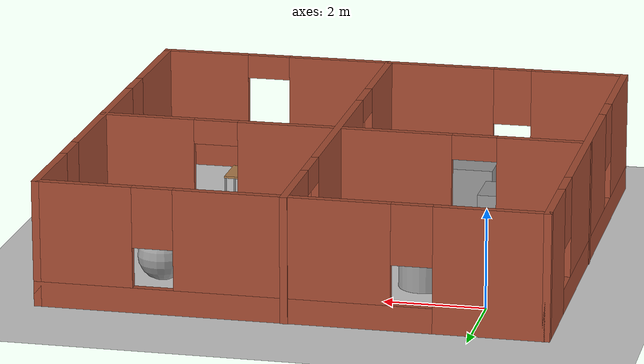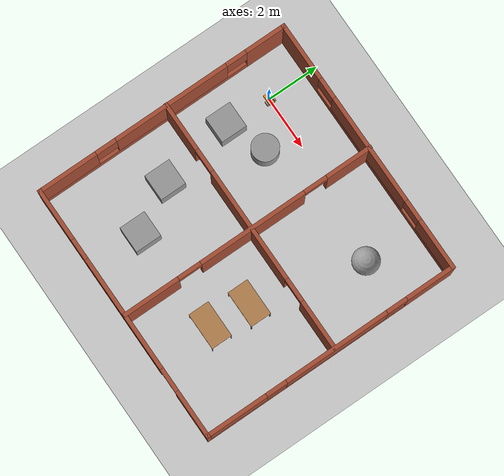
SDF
<sdf version="1.6">
 <world name="default">
  <model name="ground_plane">
   <static>1</static>
   <link name="link">
    <collision name="collision">
     <geometry><plane><normal>0 0 1</normal><size>100 100</size></plane></geometry>
     <surface><friction><ode><mu>100</mu><mu2>50</mu2></ode></friction></surface>
    </collision>
    <visual name="visual">
     <cast_shadows>0</cast_shadows>
     <geometry><plane><normal>0 0 1</normal><size>100 100</size></plane></geometry>
     <material>
      <script><uri>file://media/materials/scripts/gazebo.material</uri><name>Gazebo/Grey</name></script>
     </material>
    </visual>
   </link>
  </model>
  <light name="sun" type="directional">
   <pose>0 0 10 0 -0 0</pose>
   <diffuse>0.8 0.8 0.8 1</diffuse>
   <specular>0.1 0.1 0.1 1</specular>
   <attenuation>
    <range>1000</range>
    <constant>0.9</constant>
    <linear>0.01</linear>
    <quadratic>0.001</quadratic>
   </attenuation>
   <direction>-0.5 0.5 -1</direction>
  </light>
  <gravity>0 0 -9.8</gravity>
  <magnetic_field>6e-06 2.3e-05 -4.2e-05</magnetic_field>
  <atmosphere type="adiabatic"/>
  <physics name="default_physics" default="0" type="ode">
   <max_step_size>0.001</max_step_size>
   <real_time_factor>1</real_time_factor>
   <real_time_update_rate>1000</real_time_update_rate>
  </physics>
  <scene><ambient>0.4 0.4 0.4 1</ambient><background>0.7 0.7 0.7 1</background><shadows>1</shadows></scene>
  <spherical_coordinates>
   <surface_model>EARTH_WGS84</surface_model>
   <latitude_deg>0</latitude_deg>
   <longitude_deg>0</longitude_deg>
   <elevation>0</elevation>
   <heading_deg>0</heading_deg>
  </spherical_coordinates>
  <model name="mybot">
   <link name="chassis">
    <inertial>
     <pose>0.00198 0 0.09901 0 -0 0</pose>
     <mass>10.1</mass>
     <inertia>
      <ixx>0.500991</ixx>
      <ixy>0</ixy>
      <ixz>0.0019802</ixz>
      <iyy>1.00495</iyy>
      <iyz>0</iyz>
      <izz>0.103961</izz>
     </inertia>
    </inertial>
    <collision name="chassis_fixed_joint_lump__collision_collision">
     <geometry><box><size>0.4 0.2 0.1</size></box></geometry>
    </collision>
    <collision name="chassis_fixed_joint_lump__caster_collision_collision_1">
     <pose>-0.15 0 -0.05 0 -0 0</pose>
     <geometry><sphere><radius>0.05</radius></sphere></geometry>
    </collision>
    <collision name="chassis_fixed_joint_lump__camera_collision_2">
     <pose>0.2 0 0 0 -0 0</pose>
     <geometry><box><size>0.05 0.05 0.05</size></box></geometry>
    </collision>
    <visual name="chassis_visual_visual">
     <geometry><box><size>0.4 0.2 0.1</size></box></geometry>
     <material>
      <script><name>Gazebo/Orange</name><uri>file://media/materials/scripts/gazebo.material</uri></script>
     </material>
    </visual>
    <visual name="chassis_fixed_joint_lump__caster_visual_visual_1">
     <pose>-0.15 0 -0.05 0 -0 0</pose>
     <geometry><sphere><radius>0.05</radius></sphere></geometry>
    </visual>
    <visual name="chassis_fixed_joint_lump__camera_visual_2">
     <pose>0.2 0 0 0 -0 0</pose>
     <geometry><box><size>0.05 0.05 0.05</size></box></geometry>
     <material>
      <script><name>Gazebo/Green</name><uri>file://media/materials/scripts/gazebo.material</uri></script>
     </material>
    </visual>
    <sensor name="camera1" type="camera">
     <update_rate>30</update_rate>
     <camera name="head">
      <horizontal_fov>1.39626</horizontal_fov>
      <image><width>800</width><height>800</height><format>R8G8B8</format></image>
      <clip><near>0.02</near><far>300</far></clip>
     </camera>
     <plugin name="camera_controller" filename="libgazebo_ros_camera.so">
      <alwaysOn>true</alwaysOn>
      <updateRate>0.0</updateRate>
      <cameraName>mybot/camera1</cameraName>
      <imageTopicName>image_raw</imageTopicName>
      <cameraInfoTopicName>camera_info</cameraInfoTopicName>
      <frameName>camera</frameName>
      <hackBaseline>0.07</hackBaseline>
      <distortionK1>0.0</distortionK1>
      <distortionK2>0.0</distortionK2>
      <distortionK3>0.0</distortionK3>
      <distortionT1>0.0</distortionT1>
      <distortionT2>0.0</distortionT2>
      <robotNamespace>/</robotNamespace>
     </plugin>
     <pose>0.2 0 0 0 -0 0</pose>
    </sensor>
   </link>
   <link name="left_wheel">
    <pose>0.1 0.15 0 0 -0 0</pose>
    <inertial>
     <pose>0 0 0 -0 1.5707 1.5707</pose>
     <mass>5</mass>
     <inertia><ixx>1</ixx><ixy>0</ixy><ixz>0</ixz><iyy>1</iyy><iyz>0</iyz><izz>1</izz></inertia>
    </inertial>
    <collision name="left_wheel_fixed_joint_lump__collision_collision">
     <pose>0 0 0 3.14159 1.57079 -1.57089</pose>
     <geometry><cylinder><length>0.05</length><radius>0.1</radius></cylinder></geometry>
    </collision>
    <visual name="left_wheel_visual_visual">
     <pose>0 0 0 3.14159 1.57079 -1.57089</pose>
     <geometry><cylinder><length>0.05</length><radius>0.1</radius></cylinder></geometry>
    </visual>
   </link>
   <joint name="left_wheel_hinge" type="revolute">
    <child>left_wheel</child>
    <parent>chassis</parent>
    <axis>
     <xyz>0 1 0</xyz>
     <limit><lower>-1e+16</lower><upper>1e+16</upper></limit>
     <dynamics><spring_reference>0</spring_reference><spring_stiffness>0</spring_stiffness></dynamics>
     <use_parent_model_frame>1</use_parent_model_frame>
    </axis>
   </joint>
   <link name="right_wheel">
    <pose>0.1 -0.15 0 0 -0 0</pose>
    <inertial>
     <pose>0 0 0 -0 1.5707 1.5707</pose>
     <mass>5</mass>
     <inertia><ixx>1</ixx><ixy>0</ixy><ixz>0</ixz><iyy>1</iyy><iyz>0</iyz><izz>1</izz></inertia>
    </inertial>
    <collision name="right_wheel_fixed_joint_lump__collision_collision">
     <pose>0 0 0 3.14159 1.57079 -1.57089</pose>
     <geometry><cylinder><length>0.05</length><radius>0.1</radius></cylinder></geometry>
    </collision>
    <visual name="right_wheel_visual_visual">
     <pose>0 0 0 3.14159 1.57079 -1.57089</pose>
     <geometry><cylinder><length>0.05</length><radius>0.1</radius></cylinder></geometry>
    </visual>
   </link>
   <joint name="right_wheel_hinge" type="revolute">
    <child>right_wheel</child>
    <parent>chassis</parent>
    <axis>
     <xyz>0 1 0</xyz>
     <limit><lower>-1e+16</lower><upper>1e+16</upper></limit>
     <dynamics><spring_reference>0</spring_reference><spring_stiffness>0</spring_stiffness></dynamics>
     <use_parent_model_frame>1</use_parent_model_frame>
    </axis>
   </joint>
   <static>0</static>
   <plugin name="differential_drive_controller" filename="libgazebo_ros_diff_drive.so">
    <legacyMode>false</legacyMode>
    <alwaysOn>true</alwaysOn>
    <updateRate>20</updateRate>
    <leftJoint>left_wheel_hinge</leftJoint>
    <rightJoint>right_wheel_hinge</rightJoint>
    <wheelSeparation>0.4</wheelSeparation>
    <wheelDiameter>0.1</wheelDiameter>
    <torque>20</torque>
    <commandTopic>cmd_vel</commandTopic>
    <odometryTopic>odom</odometryTopic>
    <odometryFrame>odom</odometryFrame>
    <robotBaseFrame>chassis</robotBaseFrame>
    <robotNamespace>/</robotNamespace>
   </plugin>
   <pose>0.003289 4.5e-05 0.100001 2e-06 7e-06 0.000756</pose>
  </model>
  <model name="mybuilding">
   <pose>3.48839 -3.34484 0 0 -0 0</pose>
   <link name="Wall_11">
    <pose>4.93158 -0.009977 0 0 0 -1.5708</pose>
    <visual name="Wall_11_Visual_0">
     <pose>-4.03444 0 1.25 0 -0 0</pose>
     <geometry><box><size>1.93112 0.15 2.5</size></box></geometry>
     <material>
      <script><uri>file://media/materials/scripts/gazebo.material</uri><name>Gazebo/Bricks</name></script>
      <ambient>1 1 1 1</ambient>
     </material>
    </visual>
    <collision name="Wall_11_Collision_0">
     <geometry><box><size>1.93112 0.15 2.5</size></box></geometry>
     <pose>-4.03444 0 1.25 0 -0 0</pose>
    </collision>
    <visual name="Wall_11_Visual_1">
     <pose>0.965559 0 0.25 0 -0 0</pose>
     <geometry><box><size>8.06888 0.15 0.5</size></box></geometry>
     <material>
      <script><uri>file://media/materials/scripts/gazebo.material</uri><name>Gazebo/Bricks</name></script>
      <ambient>1 1 1 1</ambient>
     </material>
    </visual>
    <collision name="Wall_11_Collision_1">
     <geometry><box><size>8.06888 0.15 0.5</size></box></geometry>
     <pose>0.965559 0 0.25 0 -0 0</pose>
    </collision>
    <visual name="Wall_11_Visual_2">
     <pose>-0.248263 0 1.5 0 -0 0</pose>
     <geometry><box><size>4.04124 0.15 2</size></box></geometry>
     <material>
      <script><uri>file://media/materials/scripts/gazebo.material</uri><name>Gazebo/Bricks</name></script>
      <ambient>1 1 1 1</ambient>
     </material>
    </visual>
    <collision name="Wall_11_Collision_2">
     <geometry><box><size>4.04124 0.15 2</size></box></geometry>
     <pose>-0.248263 0 1.5 0 -0 0</pose>
    </collision>
    <visual name="Wall_11_Visual_3">
     <pose>3.78618 0 1.5 0 -0 0</pose>
     <geometry><box><size>2.42765 0.15 2</size></box></geometry>
     <material>
      <script><uri>file://media/materials/scripts/gazebo.material</uri><name>Gazebo/Bricks</name></script>
      <ambient>1 1 1 1</ambient>
     </material>
    </visual>
    <collision name="Wall_11_Collision_3">
     <geometry><box><size>2.42765 0.15 2</size></box></geometry>
     <pose>3.78618 0 1.5 0 -0 0</pose>
    </collision>
    <visual name="Wall_11_Visual_4">
     <pose>-2.66888 0 1.9 0 -0 0</pose>
     <geometry><box><size>0.8 0.15 1.2</size></box></geometry>
     <material>
      <script><uri>file://media/materials/scripts/gazebo.material</uri><name>Gazebo/Bricks</name></script>
      <ambient>1 1 1 1</ambient>
     </material>
    </visual>
    <collision name="Wall_11_Collision_4">
     <geometry><box><size>0.8 0.15 1.2</size></box></geometry>
     <pose>-2.66888 0 1.9 0 -0 0</pose>
    </collision>
    <visual name="Wall_11_Visual_5">
     <pose>2.17236 0 1.9 0 -0 0</pose>
     <geometry><box><size>0.8 0.15 1.2</size></box></geometry>
     <material>
      <script><uri>file://media/materials/scripts/gazebo.material</uri><name>Gazebo/Bricks</name></script>
      <ambient>1 1 1 1</ambient>
     </material>
    </visual>
    <collision name="Wall_11_Collision_5">
     <geometry><box><size>0.8 0.15 1.2</size></box></geometry>
     <pose>2.17236 0 1.9 0 -0 0</pose>
    </collision>
   </link>
   <link name="Wall_13">
    <pose>0.006582 -4.93498 0 0 -0 0</pose>
    <visual name="Wall_13_Visual_0">
     <pose>-3.98803 0 1.25 0 -0 0</pose>
     <geometry><box><size>2.02393 0.15 2.5</size></box></geometry>
     <material>
      <script><uri>file://media/materials/scripts/gazebo.material</uri><name>Gazebo/Bricks</name></script>
      <ambient>1 1 1 1</ambient>
     </material>
    </visual>
    <collision name="Wall_13_Collision_0">
     <geometry><box><size>2.02393 0.15 2.5</size></box></geometry>
     <pose>-3.98803 0 1.25 0 -0 0</pose>
    </collision>
    <visual name="Wall_13_Visual_1">
     <pose>4.07039 0 1.25 0 -0 0</pose>
     <geometry><box><size>1.85923 0.15 2.5</size></box></geometry>
     <material>
      <script><uri>file://media/materials/scripts/gazebo.material</uri><name>Gazebo/Bricks</name></script>
      <ambient>1 1 1 1</ambient>
     </material>
    </visual>
    <collision name="Wall_13_Collision_1">
     <geometry><box><size>1.85923 0.15 2.5</size></box></geometry>
     <pose>4.07039 0 1.25 0 -0 0</pose>
    </collision>
    <visual name="Wall_13_Visual_2">
     <pose>-0.367647 0 0.25 0 -0 0</pose>
     <geometry><box><size>5.21684 0.15 0.5</size></box></geometry>
     <material>
      <script><uri>file://media/materials/scripts/gazebo.material</uri><name>Gazebo/Bricks</name></script>
      <ambient>1 1 1 1</ambient>
     </material>
    </visual>
    <collision name="Wall_13_Collision_2">
     <geometry><box><size>5.21684 0.15 0.5</size></box></geometry>
     <pose>-0.367647 0 0.25 0 -0 0</pose>
    </collision>
    <visual name="Wall_13_Visual_3">
     <pose>0.032353 0 1.5 0 -0 0</pose>
     <geometry><box><size>4.41684 0.15 2</size></box></geometry>
     <material>
      <script><uri>file://media/materials/scripts/gazebo.material</uri><name>Gazebo/Bricks</name></script>
      <ambient>1 1 1 1</ambient>
     </material>
    </visual>
    <collision name="Wall_13_Collision_3">
     <geometry><box><size>4.41684 0.15 2</size></box></geometry>
     <pose>0.032353 0 1.5 0 -0 0</pose>
    </collision>
    <visual name="Wall_13_Visual_4">
     <pose>-2.57607 0 1.9 0 -0 0</pose>
     <geometry><box><size>0.8 0.15 1.2</size></box></geometry>
     <material>
      <script><uri>file://media/materials/scripts/gazebo.material</uri><name>Gazebo/Bricks</name></script>
      <ambient>1 1 1 1</ambient>
     </material>
    </visual>
    <collision name="Wall_13_Collision_4">
     <geometry><box><size>0.8 0.15 1.2</size></box></geometry>
     <pose>-2.57607 0 1.9 0 -0 0</pose>
    </collision>
    <visual name="Wall_13_Visual_5">
     <pose>2.69077 0 2.25 0 -0 0</pose>
     <geometry><box><size>0.9 0.15 0.5</size></box></geometry>
     <material>
      <script><uri>file://media/materials/scripts/gazebo.material</uri><name>Gazebo/Bricks</name></script>
      <ambient>1 1 1 1</ambient>
     </material>
    </visual>
    <collision name="Wall_13_Collision_5">
     <geometry><box><size>0.9 0.15 0.5</size></box></geometry>
     <pose>2.69077 0 2.25 0 -0 0</pose>
    </collision>
   </link>
   <link name="Wall_22">
    <pose>0.092448 0.009977 0 0 0 -1.5708</pose>
    <visual name="Wall_22_Visual_0">
     <pose>-4.08936 0 1.25 0 -0 0</pose>
     <geometry><box><size>1.82127 0.15 2.5</size></box></geometry>
     <material>
      <script><uri>file://media/materials/scripts/gazebo.material</uri><name>Gazebo/Bricks</name></script>
      <ambient>1 1 1 1</ambient>
     </material>
    </visual>
    <collision name="Wall_22_Collision_0">
     <geometry><box><size>1.82127 0.15 2.5</size></box></geometry>
     <pose>-4.08936 0 1.25 0 -0 0</pose>
    </collision>
    <visual name="Wall_22_Visual_1">
     <pose>-0.188408 0 1.25 0 -0 0</pose>
     <geometry><box><size>4.18064 0.15 2.5</size></box></geometry>
     <material>
      <script><uri>file://media/materials/scripts/gazebo.material</uri><name>Gazebo/Bricks</name></script>
      <ambient>1 1 1 1</ambient>
     </material>
    </visual>
    <collision name="Wall_22_Collision_1">
     <geometry><box><size>4.18064 0.15 2.5</size></box></geometry>
     <pose>-0.188408 0 1.25 0 -0 0</pose>
    </collision>
    <visual name="Wall_22_Visual_2">
     <pose>3.90096 0 1.25 0 -0 0</pose>
     <geometry><box><size>2.19809 0.15 2.5</size></box></geometry>
     <material>
      <script><uri>file://media/materials/scripts/gazebo.material</uri><name>Gazebo/Bricks</name></script>
      <ambient>1 1 1 1</ambient>
     </material>
    </visual>
    <collision name="Wall_22_Collision_2">
     <geometry><box><size>2.19809 0.15 2.5</size></box></geometry>
     <pose>3.90096 0 1.25 0 -0 0</pose>
    </collision>
    <visual name="Wall_22_Visual_3">
     <pose>-2.72873 0 2.25 0 -0 0</pose>
     <geometry><box><size>0.9 0.15 0.5</size></box></geometry>
     <material>
      <script><uri>file://media/materials/scripts/gazebo.material</uri><name>Gazebo/Bricks</name></script>
      <ambient>1 1 1 1</ambient>
     </material>
    </visual>
    <collision name="Wall_22_Collision_3">
     <geometry><box><size>0.9 0.15 0.5</size></box></geometry>
     <pose>-2.72873 0 2.25 0 -0 0</pose>
    </collision>
    <visual name="Wall_22_Visual_4">
     <pose>2.35191 0 2.25 0 -0 0</pose>
     <geometry><box><size>0.9 0.15 0.5</size></box></geometry>
     <material>
      <script><uri>file://media/materials/scripts/gazebo.material</uri><name>Gazebo/Bricks</name></script>
      <ambient>1 1 1 1</ambient>
     </material>
    </visual>
    <collision name="Wall_22_Collision_4">
     <geometry><box><size>0.9 0.15 0.5</size></box></geometry>
     <pose>2.35191 0 2.25 0 -0 0</pose>
    </collision>
   </link>
   <link name="Wall_24">
    <pose>-0.006583 0.159014 0 0 -0 0</pose>
    <visual name="Wall_24_Visual_0">
     <pose>-4.05965 0 1.25 0 -0 0</pose>
     <geometry><box><size>1.8807 0.15 2.5</size></box></geometry>
     <material>
      <script><uri>file://media/materials/scripts/gazebo.material</uri><name>Gazebo/Bricks</name></script>
      <ambient>1 1 1 1</ambient>
     </material>
    </visual>
    <collision name="Wall_24_Collision_0">
     <geometry><box><size>1.8807 0.15 2.5</size></box></geometry>
     <pose>-4.05965 0 1.25 0 -0 0</pose>
    </collision>
    <visual name="Wall_24_Visual_1">
     <pose>-0.035883 0 1.25 0 -0 0</pose>
     <geometry><box><size>4.36684 0.15 2.5</size></box></geometry>
     <material>
      <script><uri>file://media/materials/scripts/gazebo.material</uri><name>Gazebo/Bricks</name></script>
      <ambient>1 1 1 1</ambient>
     </material>
    </visual>
    <collision name="Wall_24_Collision_1">
     <geometry><box><size>4.36684 0.15 2.5</size></box></geometry>
     <pose>-0.035883 0 1.25 0 -0 0</pose>
    </collision>
    <visual name="Wall_24_Visual_2">
     <pose>4.02377 0 1.25 0 -0 0</pose>
     <geometry><box><size>1.95246 0.15 2.5</size></box></geometry>
     <material>
      <script><uri>file://media/materials/scripts/gazebo.material</uri><name>Gazebo/Bricks</name></script>
      <ambient>1 1 1 1</ambient>
     </material>
    </visual>
    <collision name="Wall_24_Collision_2">
     <geometry><box><size>1.95246 0.15 2.5</size></box></geometry>
     <pose>4.02377 0 1.25 0 -0 0</pose>
    </collision>
    <visual name="Wall_24_Visual_3">
     <pose>-2.6693 0 2.25 0 -0 0</pose>
     <geometry><box><size>0.9 0.15 0.5</size></box></geometry>
     <material>
      <script><uri>file://media/materials/scripts/gazebo.material</uri><name>Gazebo/Bricks</name></script>
      <ambient>1 1 1 1</ambient>
     </material>
    </visual>
    <collision name="Wall_24_Collision_3">
     <geometry><box><size>0.9 0.15 0.5</size></box></geometry>
     <pose>-2.6693 0 2.25 0 -0 0</pose>
    </collision>
    <visual name="Wall_24_Visual_4">
     <pose>2.59754 0 2.25 0 -0 0</pose>
     <geometry><box><size>0.9 0.15 0.5</size></box></geometry>
     <material>
      <script><uri>file://media/materials/scripts/gazebo.material</uri><name>Gazebo/Bricks</name></script>
      <ambient>1 1 1 1</ambient>
     </material>
    </visual>
    <collision name="Wall_24_Collision_4">
     <geometry><box><size>0.9 0.15 0.5</size></box></geometry>
     <pose>2.59754 0 2.25 0 -0 0</pose>
    </collision>
   </link>
   <link name="Wall_7">
    <pose>0.006582 4.91502 0 0 -0 0</pose>
    <visual name="Wall_7_Visual_0">
     <pose>-3.88163 0 1.25 0 -0 0</pose>
     <geometry><box><size>2.23673 0.15 2.5</size></box></geometry>
     <material>
      <script><uri>file://media/materials/scripts/gazebo.material</uri><name>Gazebo/Bricks</name></script>
      <ambient>1 1 1 1</ambient>
     </material>
    </visual>
    <collision name="Wall_7_Collision_0">
     <geometry><box><size>2.23673 0.15 2.5</size></box></geometry>
     <pose>-3.88163 0 1.25 0 -0 0</pose>
    </collision>
    <visual name="Wall_7_Visual_1">
     <pose>1.11837 0 0.25 0 -0 0</pose>
     <geometry><box><size>7.76326 0.15 0.5</size></box></geometry>
     <material>
      <script><uri>file://media/materials/scripts/gazebo.material</uri><name>Gazebo/Bricks</name></script>
      <ambient>1 1 1 1</ambient>
     </material>
    </visual>
    <collision name="Wall_7_Collision_1">
     <geometry><box><size>7.76326 0.15 0.5</size></box></geometry>
     <pose>1.11837 0 0.25 0 -0 0</pose>
    </collision>
    <visual name="Wall_7_Visual_2">
     <pose>0.137154 0 1.5 0 -0 0</pose>
     <geometry><box><size>4.20084 0.15 2</size></box></geometry>
     <material>
      <script><uri>file://media/materials/scripts/gazebo.material</uri><name>Gazebo/Bricks</name></script>
      <ambient>1 1 1 1</ambient>
     </material>
    </visual>
    <collision name="Wall_7_Collision_2">
     <geometry><box><size>4.20084 0.15 2</size></box></geometry>
     <pose>0.137154 0 1.5 0 -0 0</pose>
    </collision>
    <visual name="Wall_7_Visual_3">
     <pose>4.01879 0 1.5 0 -0 0</pose>
     <geometry><box><size>1.96243 0.15 2</size></box></geometry>
     <material>
      <script><uri>file://media/materials/scripts/gazebo.material</uri><name>Gazebo/Bricks</name></script>
      <ambient>1 1 1 1</ambient>
     </material>
    </visual>
    <collision name="Wall_7_Collision_3">
     <geometry><box><size>1.96243 0.15 2</size></box></geometry>
     <pose>4.01879 0 1.5 0 -0 0</pose>
    </collision>
    <visual name="Wall_7_Visual_4">
     <pose>-2.36327 0 1.9 0 -0 0</pose>
     <geometry><box><size>0.8 0.15 1.2</size></box></geometry>
     <material>
      <script><uri>file://media/materials/scripts/gazebo.material</uri><name>Gazebo/Bricks</name></script>
      <ambient>1 1 1 1</ambient>
     </material>
    </visual>
    <collision name="Wall_7_Collision_4">
     <geometry><box><size>0.8 0.15 1.2</size></box></geometry>
     <pose>-2.36327 0 1.9 0 -0 0</pose>
    </collision>
    <visual name="Wall_7_Visual_5">
     <pose>2.63757 0 1.9 0 -0 0</pose>
     <geometry><box><size>0.8 0.15 1.2</size></box></geometry>
     <material>
      <script><uri>file://media/materials/scripts/gazebo.material</uri><name>Gazebo/Bricks</name></script>
      <ambient>1 1 1 1</ambient>
     </material>
    </visual>
    <collision name="Wall_7_Collision_5">
     <geometry><box><size>0.8 0.15 1.2</size></box></geometry>
     <pose>2.63757 0 1.9 0 -0 0</pose>
    </collision>
   </link>
   <link name="Wall_9">
    <pose>-4.91842 -0.009977 0 0 0 -1.5708</pose>
    <visual name="Wall_9_Visual_0">
     <pose>-4.19404 0 1.25 0 -0 0</pose>
     <geometry><box><size>1.61192 0.15 2.5</size></box></geometry>
     <material>
      <script><uri>file://media/materials/scripts/gazebo.material</uri><name>Gazebo/Bricks</name></script>
      <ambient>1 1 1 1</ambient>
     </material>
    </visual>
    <collision name="Wall_9_Collision_0">
     <geometry><box><size>1.61192 0.15 2.5</size></box></geometry>
     <pose>-4.19404 0 1.25 0 -0 0</pose>
    </collision>
    <visual name="Wall_9_Visual_1">
     <pose>0.805958 0 0.25 0 -0 0</pose>
     <geometry><box><size>8.38808 0.15 0.5</size></box></geometry>
     <material>
      <script><uri>file://media/materials/scripts/gazebo.material</uri><name>Gazebo/Bricks</name></script>
      <ambient>1 1 1 1</ambient>
     </material>
    </visual>
    <collision name="Wall_9_Collision_1">
     <geometry><box><size>8.38808 0.15 0.5</size></box></geometry>
     <pose>0.805958 0 0.25 0 -0 0</pose>
    </collision>
    <visual name="Wall_9_Visual_2">
     <pose>-0.354664 0 1.5 0 -0 0</pose>
     <geometry><box><size>4.46684 0.15 2</size></box></geometry>
     <material>
      <script><uri>file://media/materials/scripts/gazebo.material</uri><name>Gazebo/Bricks</name></script>
      <ambient>1 1 1 1</ambient>
     </material>
    </visual>
    <collision name="Wall_9_Collision_2">
     <geometry><box><size>4.46684 0.15 2</size></box></geometry>
     <pose>-0.354664 0 1.5 0 -0 0</pose>
    </collision>
    <visual name="Wall_9_Visual_3">
     <pose>3.83938 0 1.5 0 -0 0</pose>
     <geometry><box><size>2.32124 0.15 2</size></box></geometry>
     <material>
      <script><uri>file://media/materials/scripts/gazebo.material</uri><name>Gazebo/Bricks</name></script>
      <ambient>1 1 1 1</ambient>
     </material>
    </visual>
    <collision name="Wall_9_Collision_3">
     <geometry><box><size>2.32124 0.15 2</size></box></geometry>
     <pose>3.83938 0 1.5 0 -0 0</pose>
    </collision>
    <visual name="Wall_9_Visual_4">
     <pose>-2.98808 0 1.9 0 -0 0</pose>
     <geometry><box><size>0.8 0.15 1.2</size></box></geometry>
     <material>
      <script><uri>file://media/materials/scripts/gazebo.material</uri><name>Gazebo/Bricks</name></script>
      <ambient>1 1 1 1</ambient>
     </material>
    </visual>
    <collision name="Wall_9_Collision_4">
     <geometry><box><size>0.8 0.15 1.2</size></box></geometry>
     <pose>-2.98808 0 1.9 0 -0 0</pose>
    </collision>
    <visual name="Wall_9_Visual_5">
     <pose>2.27875 0 1.9 0 -0 0</pose>
     <geometry><box><size>0.8 0.15 1.2</size></box></geometry>
     <material>
      <script><uri>file://media/materials/scripts/gazebo.material</uri><name>Gazebo/Bricks</name></script>
      <ambient>1 1 1 1</ambient>
     </material>
    </visual>
    <collision name="Wall_9_Collision_5">
     <geometry><box><size>0.8 0.15 1.2</size></box></geometry>
     <pose>2.27875 0 1.9 0 -0 0</pose>
    </collision>
   </link>
   <static>1</static>
  </model>
  <model name="unit_box_0">
   <pose>0.406296 -4.54893 0.499995 0 1e-05 0</pose>
   <link name="link">
    <inertial>
     <mass>1</mass>
     <inertia>
      <ixx>0.166667</ixx>
      <ixy>0</ixy>
      <ixz>0</ixz>
      <iyy>0.166667</iyy>
      <iyz>0</iyz>
      <izz>0.166667</izz>
     </inertia>
    </inertial>
    <collision name="collision"><geometry><box><size>1 1 1</size></box></geometry></collision>
    <visual name="visual">
     <geometry><box><size>1 1 1</size></box></geometry>
     <material>
      <script><name>Gazebo/Grey</name><uri>file://media/materials/scripts/gazebo.material</uri></script>
     </material>
    </visual>
   </link>
  </model>
  <model name="unit_box_1">
   <pose>1.39859 -6.23862 0.499995 -1e-05 0 0</pose>
   <link name="link">
    <inertial>
     <mass>1</mass>
     <inertia>
      <ixx>0.166667</ixx>
      <ixy>0</ixy>
      <ixz>0</ixz>
      <iyy>0.166667</iyy>
      <iyz>0</iyz>
      <izz>0.166667</izz>
     </inertia>
    </inertial>
    <collision name="collision"><geometry><box><size>1 1 1</size></box></geometry></collision>
    <visual name="visual">
     <geometry><box><size>1 1 1</size></box></geometry>
     <material>
      <script><name>Gazebo/Grey</name><uri>file://media/materials/scripts/gazebo.material</uri></script>
     </material>
    </visual>
   </link>
  </model>
  <model name="table">
   <static>0</static>
   <link name="link">
    <collision name="surface">
     <pose>0 0 1 0 -0 0</pose>
     <geometry><box><size>1.5 0.8 0.03</size></box></geometry>
     <surface><friction><ode><mu>0.6</mu><mu2>0.6</mu2></ode></friction></surface>
    </collision>
    <visual name="visual1">
     <pose>0 0 1 0 -0 0</pose>
     <geometry><box><size>1.4 0.8 0.04</size></box></geometry>
     <material>
      <script><uri>file://media/materials/scripts/gazebo.material</uri><name>Gazebo/Wood</name></script>
     </material>
    </visual>
    <collision name="front_left_leg">
     <pose>0.68 0.38 0.5 0 -0 0</pose>
     <geometry><cylinder><radius>0.02</radius><length>1</length></cylinder></geometry>
    </collision>
    <visual name="front_left_leg">
     <pose>0.68 0.38 0.5 0 -0 0</pose>
     <geometry><cylinder><radius>0.02</radius><length>1</length></cylinder></geometry>
     <material>
      <script><uri>file://media/materials/scripts/gazebo.material</uri><name>Gazebo/Grey</name></script>
     </material>
    </visual>
    <collision name="front_right_leg">
     <pose>0.68 -0.38 0.5 0 -0 0</pose>
     <geometry><cylinder><radius>0.02</radius><length>1</length></cylinder></geometry>
    </collision>
    <visual name="front_right_leg">
     <pose>0.68 -0.38 0.5 0 -0 0</pose>
     <geometry><cylinder><radius>0.02</radius><length>1</length></cylinder></geometry>
     <material>
      <script><uri>file://media/materials/scripts/gazebo.material</uri><name>Gazebo/Grey</name></script>
     </material>
    </visual>
    <collision name="back_right_leg">
     <pose>-0.68 -0.38 0.5 0 -0 0</pose>
     <geometry><cylinder><radius>0.02</radius><length>1</length></cylinder></geometry>
    </collision>
    <visual name="back_right_leg">
     <pose>-0.68 -0.38 0.5 0 -0 0</pose>
     <geometry><cylinder><radius>0.02</radius><length>1</length></cylinder></geometry>
     <material>
      <script><uri>file://media/materials/scripts/gazebo.material</uri><name>Gazebo/Grey</name></script>
     </material>
    </visual>
    <collision name="back_left_leg">
     <pose>-0.68 0.38 0.5 0 -0 0</pose>
     <geometry><cylinder><radius>0.02</radius><length>1</length></cylinder></geometry>
    </collision>
    <visual name="back_left_leg">
     <pose>-0.68 0.38 0.5 0 -0 0</pose>
     <geometry><cylinder><radius>0.02</radius><length>1</length></cylinder></geometry>
     <material>
      <script><uri>file://media/materials/scripts/gazebo.material</uri><name>Gazebo/Grey</name></script>
     </material>
    </visual>
    <inertial>
     <inertia><ixx>1</ixx><ixy>0</ixy><ixz>0</ixz><iyy>1</iyy><iyz>0</iyz><izz>1</izz></inertia>
     <mass>1</mass>
    </inertial>
   </link>
   <pose>5.47786 -4.58693 -1e-06 -1e-06 1e-06 0</pose>
  </model>
  <model name="table_0">
   <static>0</static>
   <link name="link">
    <collision name="surface">
     <pose>0 0 1 0 -0 0</pose>
     <geometry><box><size>1.5 0.8 0.03</size></box></geometry>
     <surface><friction><ode><mu>0.6</mu><mu2>0.6</mu2></ode></friction></surface>
    </collision>
    <visual name="visual1">
     <pose>0 0 1 0 -0 0</pose>
     <geometry><box><size>1.4 0.8 0.04</size></box></geometry>
     <material>
      <script><uri>file://media/materials/scripts/gazebo.material</uri><name>Gazebo/Wood</name></script>
     </material>
    </visual>
    <collision name="front_left_leg">
     <pose>0.68 0.38 0.5 0 -0 0</pose>
     <geometry><cylinder><radius>0.02</radius><length>1</length></cylinder></geometry>
    </collision>
    <visual name="front_left_leg">
     <pose>0.68 0.38 0.5 0 -0 0</pose>
     <geometry><cylinder><radius>0.02</radius><length>1</length></cylinder></geometry>
     <material>
      <script><uri>file://media/materials/scripts/gazebo.material</uri><name>Gazebo/Grey</name></script>
     </material>
    </visual>
    <collision name="front_right_leg">
     <pose>0.68 -0.38 0.5 0 -0 0</pose>
     <geometry><cylinder><radius>0.02</radius><length>1</length></cylinder></geometry>
    </collision>
    <visual name="front_right_leg">
     <pose>0.68 -0.38 0.5 0 -0 0</pose>
     <geometry><cylinder><radius>0.02</radius><length>1</length></cylinder></geometry>
     <material>
      <script><uri>file://media/materials/scripts/gazebo.material</uri><name>Gazebo/Grey</name></script>
     </material>
    </visual>
    <collision name="back_right_leg">
     <pose>-0.68 -0.38 0.5 0 -0 0</pose>
     <geometry><cylinder><radius>0.02</radius><length>1</length></cylinder></geometry>
    </collision>
    <visual name="back_right_leg">
     <pose>-0.68 -0.38 0.5 0 -0 0</pose>
     <geometry><cylinder><radius>0.02</radius><length>1</length></cylinder></geometry>
     <material>
      <script><uri>file://media/materials/scripts/gazebo.material</uri><name>Gazebo/Grey</name></script>
     </material>
    </visual>
    <collision name="back_left_leg">
     <pose>-0.68 0.38 0.5 0 -0 0</pose>
     <geometry><cylinder><radius>0.02</radius><length>1</length></cylinder></geometry>
    </collision>
    <visual name="back_left_leg">
     <pose>-0.68 0.38 0.5 0 -0 0</pose>
     <geometry><cylinder><radius>0.02</radius><length>1</length></cylinder></geometry>
     <material>
      <script><uri>file://media/materials/scripts/gazebo.material</uri><name>Gazebo/Grey</name></script>
     </material>
    </visual>
    <inertial>
     <inertia><ixx>1</ixx><ixy>0</ixy><ixz>0</ixz><iyy>1</iyy><iyz>0</iyz><izz>1</izz></inertia>
     <mass>1</mass>
    </inertial>
   </link>
   <pose>5.3449 -6.08901 -9e-06 1e-06 -1e-06 0</pose>
  </model>
  <model name="unit_cylinder_0">
   <pose>1.42321 -1.13699 0.499997 3e-06 4e-06 -0</pose>
   <link name="link">
    <inertial>
     <mass>1</mass>
     <inertia><ixx>0.145833</ixx><ixy>0</ixy><ixz>0</ixz><iyy>0.145833</iyy><iyz>0</iyz><izz>0.125</izz></inertia>
    </inertial>
    <collision name="collision">
     <geometry><cylinder><radius>0.5</radius><length>1</length></cylinder></geometry>
    </collision>
    <visual name="visual">
     <geometry><cylinder><radius>0.5</radius><length>1</length></cylinder></geometry>
     <material>
      <script><name>Gazebo/Grey</name><uri>file://media/materials/scripts/gazebo.material</uri></script>
     </material>
    </visual>
   </link>
  </model>
  <model name="unit_box_2">
   <pose>-0.0489 -1.73876 0.499995 -1e-05 0 0</pose>
   <link name="link">
    <inertial>
     <mass>1</mass>
     <inertia>
      <ixx>0.166667</ixx>
      <ixy>0</ixy>
      <ixz>0</ixz>
      <iyy>0.166667</iyy>
      <iyz>0</iyz>
      <izz>0.166667</izz>
     </inertia>
    </inertial>
    <collision name="collision"><geometry><box><size>1 1 1</size></box></geometry></collision>
    <visual name="visual">
     <geometry><box><size>1 1 1</size></box></geometry>
     <material>
      <script><name>Gazebo/Grey</name><uri>file://media/materials/scripts/gazebo.material</uri></script>
     </material>
    </visual>
   </link>
  </model>
  <model name="unit_sphere_0">
   <pose>6.49609 -0.484588 0.5 0 -0 0</pose>
   <link name="link">
    <inertial>
     <mass>1</mass>
     <inertia><ixx>0.1</ixx><ixy>0</ixy><ixz>0</ixz><iyy>0.1</iyy><iyz>0</iyz><izz>0.1</izz></inertia>
    </inertial>
    <collision name="collision"><geometry><sphere><radius>0.5</radius></sphere></geometry></collision>
    <visual name="visual">
     <geometry><sphere><radius>0.5</radius></sphere></geometry>
     <material>
      <script><name>Gazebo/Grey</name><uri>file://media/materials/scripts/gazebo.material</uri></script>
     </material>
    </visual>
   </link>
  </model>
 </world>
</sdf>
